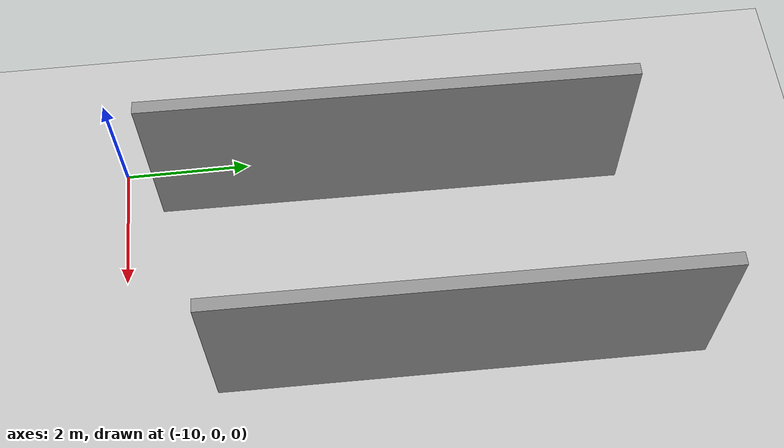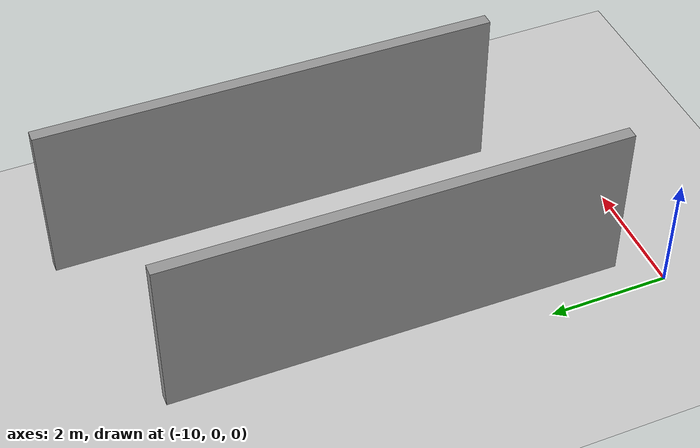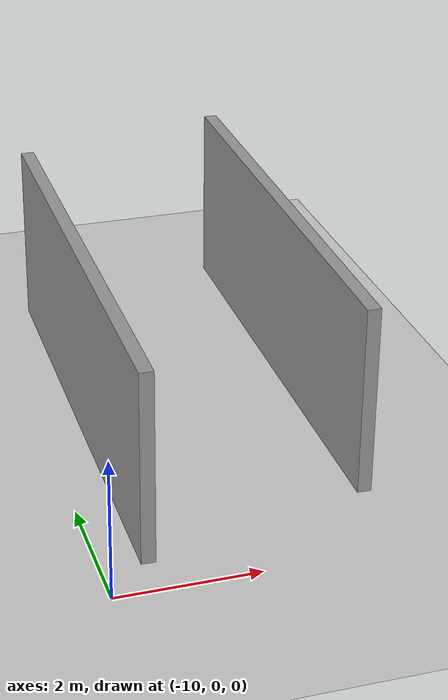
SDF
<sdf version="1.7">
 <world name="default">
  <model name="ground_plane">
   <static>1</static>
   <link name="link">
    <collision name="collision">
     <geometry><plane><normal>0 0 1</normal><size>100 100</size></plane></geometry>
     <surface><friction><ode><mu>100</mu><mu2>50</mu2></ode></friction></surface>
    </collision>
    <visual name="visual">
     <cast_shadows>0</cast_shadows>
     <geometry><plane><normal>0 0 1</normal><size>100 100</size></plane></geometry>
     <material>
      <script><uri>file://media/materials/scripts/gazebo.material</uri><name>Gazebo/Grey</name></script>
     </material>
    </visual>
   </link>
  </model>
  <model name="grey_wall_2_clone_3">
   <static>1</static>
   <link name="link">
    <pose>0 0 1.4 0 -0 0</pose>
    <collision name="collision"><geometry><box><size>7.5 0.2 2.8</size></box></geometry></collision>
    <visual name="visual">
     <cast_shadows>0</cast_shadows>
     <geometry><box><size>7.5 0.2 2.8</size></box></geometry>
     <material>
      <script>
       <uri>model://grey_wall/materials/scripts</uri>
       <uri>model://grey_wall/materials/textures</uri>
       <name>vrc/grey_wall</name>
      </script>
     </material>
    </visual>
   </link>
   <pose>-9.32223 4.33663 0 0 -0 1.5595</pose>
  </model>
  <model name="grey_wall_2_clone_4_clone_clone_5">
   <static>1</static>
   <link name="link">
    <pose>0 0 1.4 0 -0 0</pose>
    <collision name="collision"><geometry><box><size>7.5 0.2 2.8</size></box></geometry></collision>
    <visual name="visual">
     <cast_shadows>0</cast_shadows>
     <geometry><box><size>7.5 0.2 2.8</size></box></geometry>
     <material>
      <script>
       <uri>model://grey_wall/materials/scripts</uri>
       <uri>model://grey_wall/materials/textures</uri>
       <name>vrc/grey_wall</name>
      </script>
     </material>
    </visual>
   </link>
   <pose>-6.0324 5.12443 0 0 -0 1.5595</pose>
  </model>
 </world>
</sdf>
